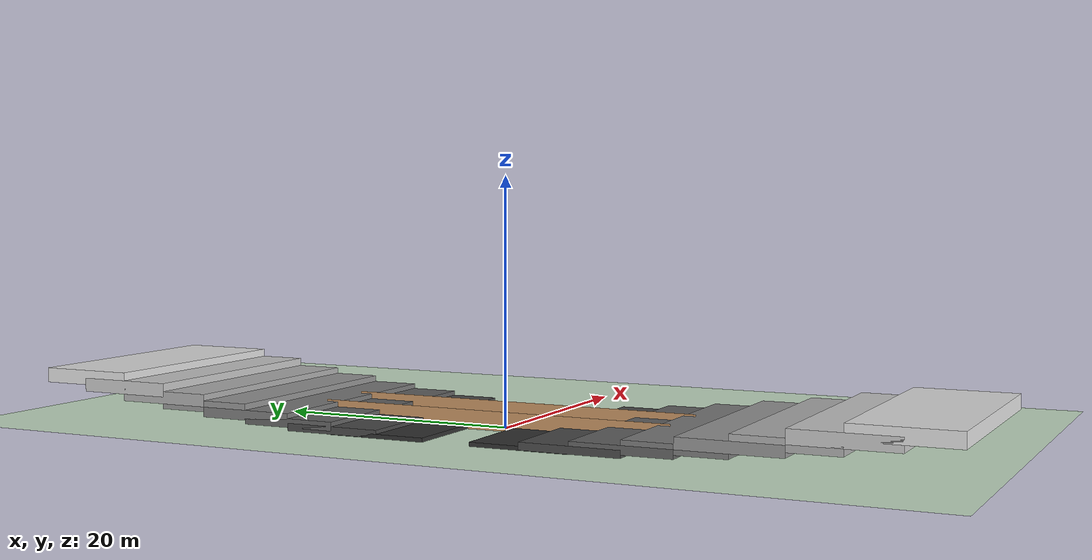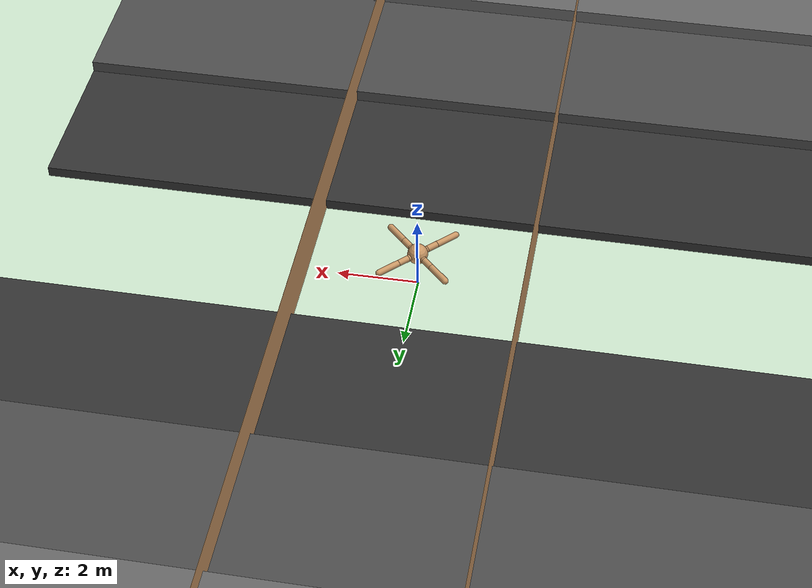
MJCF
<mujoco model="ant">
  <compiler angle="degree" coordinate="local" inertiafromgeom="true"/>
  <option integrator="RK4" timestep="0.01"/>
  <custom>
    <numeric data="0.0 0.0 0.55 1.0 0.0 0.0 0.0 0.0 1.0 0.0 -1.0 0.0 -1.0 0.0 1.0" name="init_qpos"/>
  </custom>
  <default>
    <joint armature="1" damping="1" limited="true"/>
    <geom conaffinity="0" condim="3" density="5.0" friction="1 0.5 0.5" margin="0.01" rgba="0.8 0.6 0.4 1"/>
  </default>
  <asset>
    <texture builtin="gradient" height="100" rgb1="1 1 1" rgb2="0 0 0" type="skybox" width="100"/>
    <texture builtin="flat" height="1278" mark="cross" markrgb="1 1 1" name="texgeom" random="0.01" rgb1="0.8 0.6 0.4" rgb2="0.8 0.6 0.4" type="cube" width="127"/>
    <texture builtin="checker" height="100" name="texplane" rgb1="0 0 0" rgb2="0.8 0.8 0.8" type="2d" width="100"/>
    <material name="MatPlane" reflectance="0.5" shininess="1" specular="1" texrepeat="60 60" texture="texplane"/>
    <material name="geom" texture="texgeom" texuniform="true"/>
  </asset>
  <worldbody>
    <light cutoff="100" diffuse="1 1 1" dir="-0 0 -1.3" directional="true" exponent="1" pos="0 0 1.3" specular=".1 .1 .1"/>
    <geom conaffinity="1" condim="3" material="MatPlane" name="floor" pos="0 0 0.25" rgba="0.8 0.9 0.8 1" size="40 40 40" type="plane"/>

    <geom conaffinity="1" condim="3" name="step_px" type="plane" pos="-2.7 0 .7" zaxis="1 0 0"  size="1 15 .5"/>
    <geom conaffinity="1" condim="3" name="step_nx" type="plane" pos="2.7 0 .7" zaxis="-1 0 0"  size="1 15 .5"/>

    <!-- plane starts from 0.25 -->
    <geom conaffinity="1" condim="3" name="step_1" type="box" pos="0 6 0.25" size="10 4 0.25" rgba="0.2 0.2 0.2 1"/>
    <geom conaffinity="1" condim="3" name="step_2" type="box" pos="0 10 0.5" size="10 4 0.3" rgba="0.3 0.3 0.3 1"/>
    <geom conaffinity="1" condim="3" name="step_3" type="box" pos="0 14 0.8" size="10 4 0.35" rgba="0.4 0.4 0.4 1"/>
    <geom conaffinity="1" condim="3" name="step_4" type="box" pos="0 18 1.15" size="10 4 0.4" rgba="0.5 0.5 0.5 1"/>
    <geom conaffinity="1" condim="3" name="step_5" type="box" pos="0 22 1.6" size="10 4 0.45" rgba="0.6 0.6 0.6 1"/>
    <geom conaffinity="1" condim="3" name="step_6" type="box" pos="0 26 2.05" size="10 4 0.5" rgba="0.7 0.7 0.7 1"/>
    <geom conaffinity="1" condim="3" name="step_7" type="box" pos="0 30 2.65" size="10 4 0.55" rgba="0.8 0.8 0.8 1"/>
    <geom conaffinity="1" condim="3" name="step_8" type="box" pos="0 34 3.25" size="10 4 0.6" rgba="0.9 0.9 0.9 1"/>

    <geom conaffinity="1" condim="3" name="nstep_1" type="box" pos="0 -6 0.25" size="10 4 0.25" rgba="0.2 0.2 0.2 1"/>
    <geom conaffinity="1" condim="3" name="nstep_2" type="box" pos="0 -10 0.5" size="10 4 0.3" rgba="0.3 0.3 0.3 1"/>
    <geom conaffinity="1" condim="3" name="nstep_3" type="box" pos="0 -14 0.8" size="10 4 0.35" rgba="0.4 0.4 0.4 1"/>
    <geom conaffinity="1" condim="3" name="nstep_4" type="box" pos="0 -18 1.15" size="10 4 0.4" rgba="0.5 0.5 0.5 1"/>
    <geom conaffinity="1" condim="3" name="nstep_5" type="box" pos="0 -22 1.6" size="10 4 0.45" rgba="0.6 0.6 0.6 1"/>
    <geom conaffinity="1" condim="3" name="nstep_6" type="box" pos="0 -26 2.05" size="10 4 0.5" rgba="0.7 0.7 0.7 1"/>
    <geom conaffinity="1" condim="3" name="nstep_7" type="box" pos="0 -30 2.65" size="10 4 0.55" rgba="0.8 0.8 0.8 1"/>
    <geom conaffinity="1" condim="3" name="nstep_8" type="box" pos="0 -34 3.25" size="10 4 0.6" rgba="0.9 0.9 0.9 1"/>

    <body name="torso" pos="0 0 1.0">
      <camera name="global2"  pos="-10 0 10" xyaxes="0 -1 0 1 0 1" mode="trackcom"/>
      <camera name="track" mode="trackcom" pos="0 -3 0.3" xyaxes="1 0 0 0 0 1"/>
      <geom name="torso_geom" pos="0 0 0" size="0.25" type="sphere"/>
      <joint armature="0" damping="0" limited="false" margin="0.01" name="root" pos="0 0 0" type="free"/>
      <body name="front_left_leg" pos="0 0 0">
        <geom fromto="0.0 0.0 0.0 0.2 0.2 0.0" name="aux_1_geom" size="0.08" type="capsule"/>
        <body name="aux_1" pos="0.2 0.2 0">
          <joint axis="0 0 1" name="hip_1" pos="0.0 0.0 0.0" range="-30 30" type="hinge"/>
          <geom fromto="0.0 0.0 0.0 0.2 0.2 0.0" name="left_leg_geom" size="0.08" type="capsule"/>
          <body pos="0.2 0.2 0">
            <joint axis="-1 1 0" name="ankle_1" pos="0.0 0.0 0.0" range="30 70" type="hinge"/>
            <geom fromto="0.0 0.0 0.0 0.4 0.4 0.0" name="left_ankle_geom" size="0.08" type="capsule"/>
          </body>
        </body>
      </body>
      <body name="front_right_leg" pos="0 0 0">
        <geom fromto="0.0 0.0 0.0 -0.2 0.2 0.0" name="aux_2_geom" size="0.08" type="capsule"/>
        <body name="aux_2" pos="-0.2 0.2 0">
          <joint axis="0 0 1" name="hip_2" pos="0.0 0.0 0.0" range="-30 30" type="hinge"/>
          <geom fromto="0.0 0.0 0.0 -0.2 0.2 0.0" name="right_leg_geom" size="0.08" type="capsule"/>
          <body pos="-0.2 0.2 0">
            <joint axis="1 1 0" name="ankle_2" pos="0.0 0.0 0.0" range="-70 -30" type="hinge"/>
            <geom fromto="0.0 0.0 0.0 -0.4 0.4 0.0" name="right_ankle_geom" size="0.08" type="capsule"/>
          </body>
        </body>
      </body>
      <body name="back_leg" pos="0 0 0">
        <geom fromto="0.0 0.0 0.0 -0.2 -0.2 0.0" name="aux_3_geom" size="0.08" type="capsule"/>
        <body name="aux_3" pos="-0.2 -0.2 0">
          <joint axis="0 0 1" name="hip_3" pos="0.0 0.0 0.0" range="-30 30" type="hinge"/>
          <geom fromto="0.0 0.0 0.0 -0.2 -0.2 0.0" name="back_leg_geom" size="0.08" type="capsule"/>
          <body pos="-0.2 -0.2 0">
            <joint axis="-1 1 0" name="ankle_3" pos="0.0 0.0 0.0" range="-70 -30" type="hinge"/>
            <geom fromto="0.0 0.0 0.0 -0.4 -0.4 0.0" name="third_ankle_geom" size="0.08" type="capsule"/>
          </body>
        </body>
      </body>
      <body name="right_back_leg" pos="0 0 0">
        <geom fromto="0.0 0.0 0.0 0.2 -0.2 0.0" name="aux_4_geom" size="0.08" type="capsule"/>
        <body name="aux_4" pos="0.2 -0.2 0">
          <joint axis="0 0 1" name="hip_4" pos="0.0 0.0 0.0" range="-30 30" type="hinge"/>
          <geom fromto="0.0 0.0 0.0 0.2 -0.2 0.0" name="rightback_leg_geom" size="0.08" type="capsule"/>
          <body pos="0.2 -0.2 0">
            <joint axis="1 1 0" name="ankle_4" pos="0.0 0.0 0.0" range="30 70" type="hinge"/>
            <geom fromto="0.0 0.0 0.0 0.4 -0.4 0.0" name="fourth_ankle_geom" size="0.08" type="capsule"/>
          </body>
        </body>
      </body>
    </body>
  </worldbody>
  <actuator>
    <motor ctrllimited="true" ctrlrange="-1.0 1.0" joint="hip_4" gear="150"/>
    <motor ctrllimited="true" ctrlrange="-1.0 1.0" joint="ankle_4" gear="150"/>
    <motor ctrllimited="true" ctrlrange="-1.0 1.0" joint="hip_1" gear="150"/>
    <motor ctrllimited="true" ctrlrange="-1.0 1.0" joint="ankle_1" gear="150"/>
    <motor ctrllimited="true" ctrlrange="-1.0 1.0" joint="hip_2" gear="150"/>
    <motor ctrllimited="true" ctrlrange="-1.0 1.0" joint="ankle_2" gear="150"/>
    <motor ctrllimited="true" ctrlrange="-1.0 1.0" joint="hip_3" gear="150"/>
    <motor ctrllimited="true" ctrlrange="-1.0 1.0" joint="ankle_3" gear="150"/>
  </actuator>
</mujoco>
